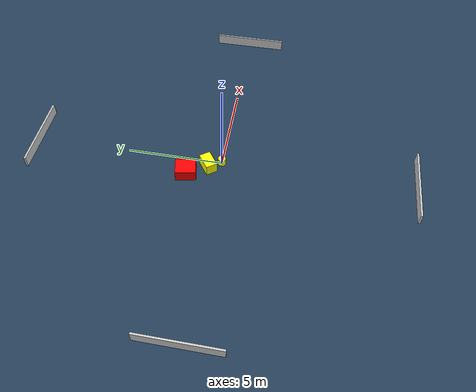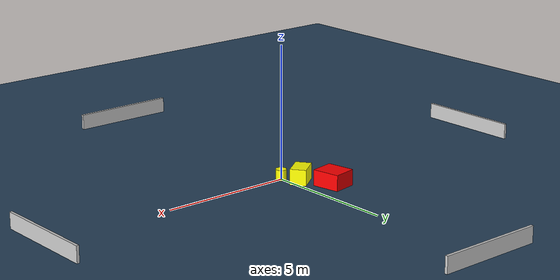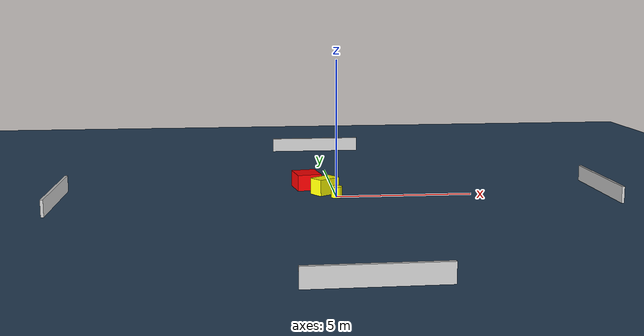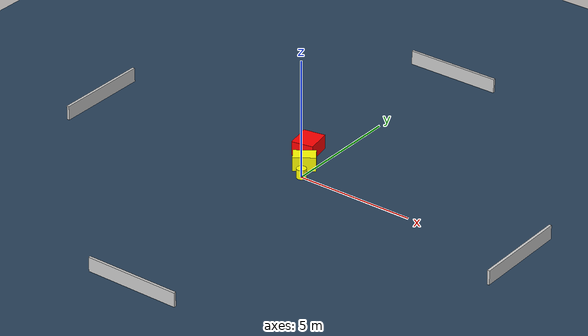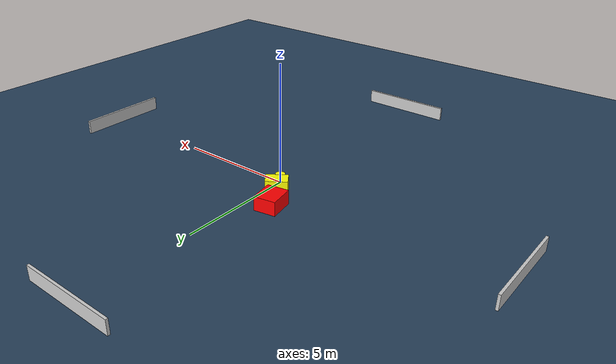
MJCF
<?xml version="1.0" ?>
<mujoco model="generated_environment">
  <option timestep="0.01" integrator="RK4" cone="elliptic"/>
  <default>
    <geom density="1"/>
  </default>
  <asset>
    <texture builtin="gradient" height="3072" name="skybox" rgb1="0.3 0.5 0.7" rgb2="0 0 0" type="skybox" width="512"/>
    <texture builtin="checker" height="300" name="groundplane" rgb1="0.2 0.3 0.4" rgb2="0.1 0.2 0.3" type="2d" width="300"/>
    <material name="groundplane" reflectance="0.2" texrepeat="5 5" texture="groundplane"/>
  </asset>
  <worldbody>
    <light dir="0 0 -1" directional="true" pos="0 0 1.5"/>
    <geom condim="3" friction="0.5 0.005 0.001" material="groundplane" name="floor" pos="0 0 0" size="0 0 0.05" type="plane"/>
    <body name="walls">
      <geom name="wall_1" condim="4" pos="-10.0 0.0 0.3" rgba="0.800000011920929 0.800000011920929 0.800000011920929 1.0" size="0.05 2.0 0.3" type="box"/>
      <geom name="wall_2" condim="4" pos="10.0 0.0 0.3" rgba="0.800000011920929 0.800000011920929 0.800000011920929 1.0" size="0.05 2.0 0.3" type="box"/>
      <geom name="wall_3" condim="4" pos="0.0 -10.0 0.3" rgba="0.800000011920929 0.800000011920929 0.800000011920929 1.0" size="2.0 0.05 0.3" type="box"/>
      <geom name="wall_4" condim="4" pos="0.0 10.0 0.3" rgba="0.800000011920929 0.800000011920929 0.800000011920929 1.0" size="2.0 0.05 0.3" type="box"/>
    </body>
    <body name="robot">
      <joint name="joint_x" type="slide" pos="0 0 0" axis="1 0 0"/>
      <joint name="joint_y" type="slide" pos="0 0 0" axis="0 1 0"/>
      <geom name="robot" type="cylinder" pos="0.0 0.0 0.2" size="0.2 0.2 0.0" mass="5.0" friction="1.0 0.005 0.0001" condim="4" rgba="1.0 1.0 0.0 1.0"/>
    </body>
    <body name="obstacle_1_movable">
      <geom name="obstacle_1_movable" condim="4" pos="-0.36589503776680876 0.6622496603948146 0.3" euler="0 0 305.4030842480762" friction="0.0 0.005 0.001" rgba="1.0 1.0 0.0 1.0" size="0.2976971435784741 0.4521341548428629 0.3" type="box" mass="0.1"/>
      <joint type="free"/>
    </body>
    <body name="obstacle_2_static">
      <geom name="obstacle_2_static" condim="4" pos="-0.982751752073333 1.7199224966622009 0.3" euler="0 0 280.12638687810136" friction="0.0 0.005 0.001" rgba="1.0 0.0 0.0 1.0" size="0.5285994138590181 0.45654449011229686 0.3" type="box"/>
    </body>
  </worldbody>
  <actuator>
    <motor name="actuator_x" joint="joint_x" gear="1" ctrlrange="-1 1"/>
    <motor name="actuator_y" joint="joint_y" gear="1" ctrlrange="-1 1"/>
  </actuator>
</mujoco>
